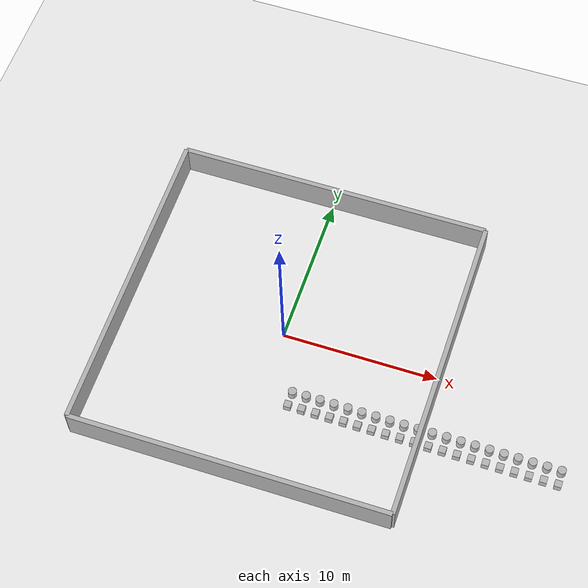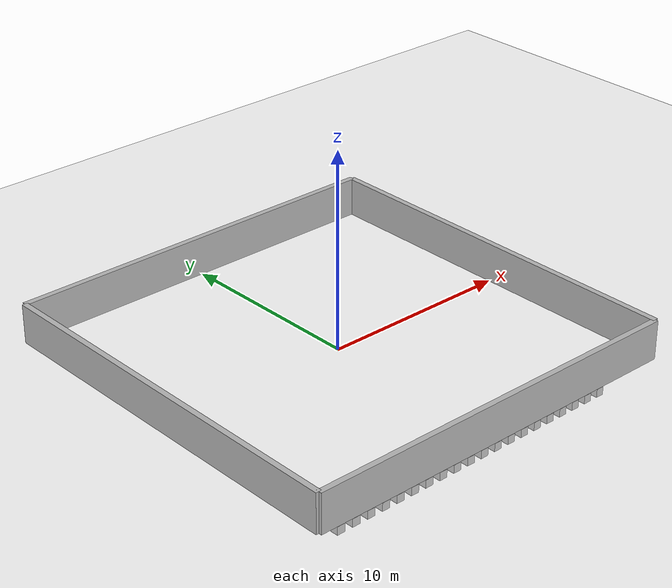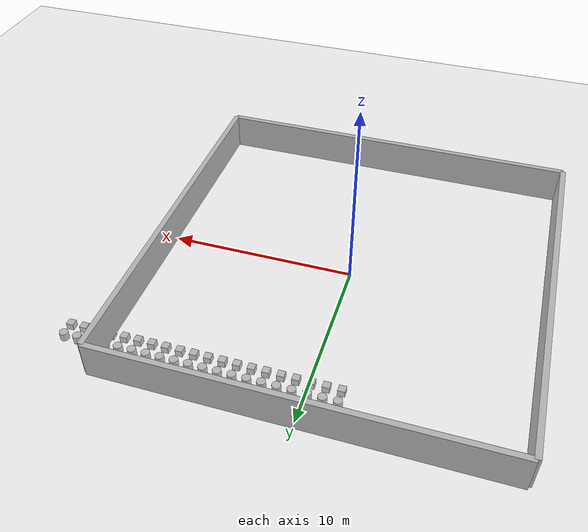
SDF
<sdf version='1.9'>
  <world name='big'>
    <physics name='1ms' type='ignored'>
      <max_step_size>0.003</max_step_size>
      <real_time_factor>1</real_time_factor>
      <real_time_update_rate>1000</real_time_update_rate>
    </physics>

    <plugin name='ignition::gazebo::systems::Physics' filename='ignition-gazebo-physics-system'/>
    <plugin name='ignition::gazebo::systems::UserCommands' filename='ignition-gazebo-user-commands-system'/>
    <plugin name='ignition::gazebo::systems::SceneBroadcaster' filename='ignition-gazebo-scene-broadcaster-system'/>
    <plugin name='ignition::gazebo::systems::Contact' filename='ignition-gazebo-contact-system'/>

    <gravity>0 0 -9.8</gravity>
    <scene>
      <ambient>0.4 0.4 0.4 1</ambient>
      <background>0.7 0.7 0.7 1</background>
      <shadows>true</shadows>
    </scene>

    <!-- 地面 -->
    <model name='ground_plane'>
      <static>true</static>
      <link name='link'>
        <collision name='collision'>
          <geometry><plane><normal>0 0 1</normal><size>100 100</size></plane></geometry>
        </collision>
        <visual name='visual'>
          <geometry><plane><normal>0 0 1</normal><size>100 100</size></plane></geometry>
          <material>
            <ambient>0.8 0.8 0.8 1</ambient>
            <diffuse>0.8 0.8 0.8 1</diffuse>
            <specular>0.8 0.8 0.8 1</specular>
          </material>
        </visual>
      </link>
    </model>

    <!-- 外框：20x20，牆高 2m，厚 0.3m -->
    <model name='border'>
      <pose>0 0 1 0 0 0</pose>
      <static>true</static>
      <link name='wall_west'>
        <pose>-10.15 0 0 0 0 0</pose>
        <collision name='col'><geometry><box><size>0.3 20.3 2</size></box></geometry></collision>
        <visual name='vis'><geometry><box><size>0.3 20.3 2</size></box></geometry></visual>
      </link>
      <link name='wall_east'>
        <pose>10.15 0 0 0 0 0</pose>
        <collision name='col'><geometry><box><size>0.3 20.3 2</size></box></geometry></collision>
        <visual name='vis'><geometry><box><size>0.3 20.3 2</size></box></geometry></visual>
      </link>
      <link name='wall_north'>
        <pose>0 10.15 0 0 0 0</pose>
        <collision name='col'><geometry><box><size>20.3 0.3 2</size></box></geometry></collision>
        <visual name='vis'><geometry><box><size>20.3 0.3 2</size></box></geometry></visual>
      </link>
      <link name='wall_south'>
        <pose>0 -10.15 0 0 0 0</pose>
        <collision name='col'><geometry><box><size>20.3 0.3 2</size></box></geometry></collision>
        <visual name='vis'><geometry><box><size>20.3 0.3 2</size></box></geometry></visual>
      </link>
    </model>

    <!-- 預埋物件池：10 個方柱 + 10 個圓柱，初始藏在 z = -10 -->
    <!-- 方柱大小 0.5x0.5x0.5，圓柱半徑 0.3，高 0.6，皆 static -->
    <!-- 你若要改尺寸，記得在 ObstacleManager 的 radius 也同步調整 -->
    <!-- Boxes -->
    <model name='box_pool_0'><pose>0 0 -10 0 0 0</pose><static>true</static>
      <link name='link'><visual name='vis'><geometry><box><size>0.5 0.5 0.5</size></box></geometry></visual>
      <collision name='col'><geometry><box><size>0.5 0.5 0.5</size></box></geometry></collision></link>
    </model>
    <model name='box_pool_1'><pose>1 0 -10 0 0 0</pose><static>true</static>
      <link name='link'><visual name='vis'><geometry><box><size>0.5 0.5 0.5</size></box></geometry></visual>
      <collision name='col'><geometry><box><size>0.5 0.5 0.5</size></box></geometry></collision></link>
    </model>
    <model name='box_pool_2'><pose>2 0 -10 0 0 0</pose><static>true</static>
      <link name='link'><visual name='vis'><geometry><box><size>0.5 0.5 0.5</size></box></geometry></visual>
      <collision name='col'><geometry><box><size>0.5 0.5 0.5</size></box></geometry></collision></link>
    </model>
    <model name='box_pool_3'><pose>3 0 -10 0 0 0</pose><static>true</static>
      <link name='link'><visual name='vis'><geometry><box><size>0.5 0.5 0.5</size></box></geometry></visual>
      <collision name='col'><geometry><box><size>0.5 0.5 0.5</size></box></geometry></collision></link>
    </model>
    <model name='box_pool_4'><pose>4 0 -10 0 0 0</pose><static>true</static>
      <link name='link'><visual name='vis'><geometry><box><size>0.5 0.5 0.5</size></box></geometry></visual>
      <collision name='col'><geometry><box><size>0.5 0.5 0.5</size></box></geometry></collision></link>
    </model>
    <model name='box_pool_5'><pose>5 0 -10 0 0 0</pose><static>true</static>
      <link name='link'><visual name='vis'><geometry><box><size>0.5 0.5 0.5</size></box></geometry></visual>
      <collision name='col'><geometry><box><size>0.5 0.5 0.5</size></box></geometry></collision></link>
    </model>
    <model name='box_pool_6'><pose>6 0 -10 0 0 0</pose><static>true</static>
      <link name='link'><visual name='vis'><geometry><box><size>0.5 0.5 0.5</size></box></geometry></visual>
      <collision name='col'><geometry><box><size>0.5 0.5 0.5</size></box></geometry></collision></link>
    </model>
    <model name='box_pool_7'><pose>7 0 -10 0 0 0</pose><static>true</static>
      <link name='link'><visual name='vis'><geometry><box><size>0.5 0.5 0.5</size></box></geometry></visual>
      <collision name='col'><geometry><box><size>0.5 0.5 0.5</size></box></geometry></collision></link>
    </model>
    <model name='box_pool_8'><pose>8 0 -10 0 0 0</pose><static>true</static>
      <link name='link'><visual name='vis'><geometry><box><size>0.5 0.5 0.5</size></box></geometry></visual>
      <collision name='col'><geometry><box><size>0.5 0.5 0.5</size></box></geometry></collision></link>
    </model>
    <model name='box_pool_9'><pose>9 0 -10 0 0 0</pose><static>true</static>
      <link name='link'><visual name='vis'><geometry><box><size>0.5 0.5 0.5</size></box></geometry></visual>
      <collision name='col'><geometry><box><size>0.5 0.5 0.5</size></box></geometry></collision></link>
    </model>
    <model name='box_pool_10'><pose>10 0 -10 0 0 0</pose><static>true</static>
      <link name='link'><visual name='vis'><geometry><box><size>0.5 0.5 0.5</size></box></geometry></visual>
      <collision name='col'><geometry><box><size>0.5 0.5 0.5</size></box></geometry></collision></link>
    </model>
    <model name='box_pool_11'><pose>11 0 -10 0 0 0</pose><static>true</static>
      <link name='link'><visual name='vis'><geometry><box><size>0.5 0.5 0.5</size></box></geometry></visual>
      <collision name='col'><geometry><box><size>0.5 0.5 0.5</size></box></geometry></collision></link>
    </model>
    <model name='box_pool_12'><pose>12 0 -10 0 0 0</pose><static>true</static>
      <link name='link'><visual name='vis'><geometry><box><size>0.5 0.5 0.5</size></box></geometry></visual>
      <collision name='col'><geometry><box><size>0.5 0.5 0.5</size></box></geometry></collision></link>
    </model>
    <model name='box_pool_13'><pose>13 0 -10 0 0 0</pose><static>true</static>
      <link name='link'><visual name='vis'><geometry><box><size>0.5 0.5 0.5</size></box></geometry></visual>
      <collision name='col'><geometry><box><size>0.5 0.5 0.5</size></box></geometry></collision></link>
    </model>
    <model name='box_pool_14'><pose>14 0 -10 0 0 0</pose><static>true</static>
      <link name='link'><visual name='vis'><geometry><box><size>0.5 0.5 0.5</size></box></geometry></visual>
      <collision name='col'><geometry><box><size>0.5 0.5 0.5</size></box></geometry></collision></link>
    </model>
    <model name='box_pool_15'><pose>15 0 -10 0 0 0</pose><static>true</static>
      <link name='link'><visual name='vis'><geometry><box><size>0.5 0.5 0.5</size></box></geometry></visual>
      <collision name='col'><geometry><box><size>0.5 0.5 0.5</size></box></geometry></collision></link>
    </model>
    <model name='box_pool_16'><pose>16 0 -10 0 0 0</pose><static>true</static>
      <link name='link'><visual name='vis'><geometry><box><size>0.5 0.5 0.5</size></box></geometry></visual>
      <collision name='col'><geometry><box><size>0.5 0.5 0.5</size></box></geometry></collision></link>
    </model>
    <model name='box_pool_17'><pose>17 0 -10 0 0 0</pose><static>true</static>
      <link name='link'><visual name='vis'><geometry><box><size>0.5 0.5 0.5</size></box></geometry></visual>
      <collision name='col'><geometry><box><size>0.5 0.5 0.5</size></box></geometry></collision></link>
    </model>
    <model name='box_pool_18'><pose>18 0 -10 0 0 0</pose><static>true</static>
      <link name='link'><visual name='vis'><geometry><box><size>0.5 0.5 0.5</size></box></geometry></visual>
      <collision name='col'><geometry><box><size>0.5 0.5 0.5</size></box></geometry></collision></link>
    </model>
    <model name='box_pool_19'><pose>19 0 -10 0 0 0</pose><static>true</static>
      <link name='link'><visual name='vis'><geometry><box><size>0.5 0.5 0.5</size></box></geometry></visual>
      <collision name='col'><geometry><box><size>0.5 0.5 0.5</size></box></geometry></collision></link>
    </model>

    <!-- Cylinders -->
    <model name='cyl_pool_0'><pose>0 1 -10 0 0 0</pose><static>true</static>
      <link name='link'><visual name='vis'><geometry><cylinder><radius>0.3</radius><length>0.6</length></cylinder></geometry></visual>
      <collision name='col'><geometry><cylinder><radius>0.3</radius><length>0.6</length></cylinder></geometry></collision></link>
    </model>
    <model name='cyl_pool_1'><pose>1 1 -10 0 0 0</pose><static>true</static>
      <link name='link'><visual name='vis'><geometry><cylinder><radius>0.3</radius><length>0.6</length></cylinder></geometry></visual>
      <collision name='col'><geometry><cylinder><radius>0.3</radius><length>0.6</length></cylinder></geometry></collision></link>
    </model>
    <model name='cyl_pool_2'><pose>2 1 -10 0 0 0</pose><static>true</static>
      <link name='link'><visual name='vis'><geometry><cylinder><radius>0.3</radius><length>0.6</length></cylinder></geometry></visual>
      <collision name='col'><geometry><cylinder><radius>0.3</radius><length>0.6</length></cylinder></geometry></collision></link>
    </model>
    <model name='cyl_pool_3'><pose>3 1 -10 0 0 0</pose><static>true</static>
      <link name='link'><visual name='vis'><geometry><cylinder><radius>0.3</radius><length>0.6</length></cylinder></geometry></visual>
      <collision name='col'><geometry><cylinder><radius>0.3</radius><length>0.6</length></cylinder></geometry></collision></link>
    </model>
    <model name='cyl_pool_4'><pose>4 1 -10 0 0 0</pose><static>true</static>
      <link name='link'><visual name='vis'><geometry><cylinder><radius>0.3</radius><length>0.6</length></cylinder></geometry></visual>
      <collision name='col'><geometry><cylinder><radius>0.3</radius><length>0.6</length></cylinder></geometry></collision></link>
    </model>
    <model name='cyl_pool_5'><pose>5 1 -10 0 0 0</pose><static>true</static>
      <link name='link'><visual name='vis'><geometry><cylinder><radius>0.3</radius><length>0.6</length></cylinder></geometry></visual>
      <collision name='col'><geometry><cylinder><radius>0.3</radius><length>0.6</length></cylinder></geometry></collision></link>
    </model>
    <model name='cyl_pool_6'><pose>6 1 -10 0 0 0</pose><static>true</static>
      <link name='link'><visual name='vis'><geometry><cylinder><radius>0.3</radius><length>0.6</length></cylinder></geometry></visual>
      <collision name='col'><geometry><cylinder><radius>0.3</radius><length>0.6</length></cylinder></geometry></collision></link>
    </model>
    <model name='cyl_pool_7'><pose>7 1 -10 0 0 0</pose><static>true</static>
      <link name='link'><visual name='vis'><geometry><cylinder><radius>0.3</radius><length>0.6</length></cylinder></geometry></visual>
      <collision name='col'><geometry><cylinder><radius>0.3</radius><length>0.6</length></cylinder></geometry></collision></link>
    </model>
    <model name='cyl_pool_8'><pose>8 1 -10 0 0 0</pose><static>true</static>
      <link name='link'><visual name='vis'><geometry><cylinder><radius>0.3</radius><length>0.6</length></cylinder></geometry></visual>
      <collision name='col'><geometry><cylinder><radius>0.3</radius><length>0.6</length></cylinder></geometry></collision></link>
    </model>
    <model name='cyl_pool_9'><pose>9 1 -10 0 0 0</pose><static>true</static>
      <link name='link'><visual name='vis'><geometry><cylinder><radius>0.3</radius><length>0.6</length></cylinder></geometry></visual>
      <collision name='col'><geometry><cylinder><radius>0.3</radius><length>0.6</length></cylinder></geometry></collision></link>
    </model>
    <model name='cyl_pool_10'><pose>10 1 -10 0 0 0</pose><static>true</static>
      <link name='link'><visual name='vis'><geometry><cylinder><radius>0.3</radius><length>0.6</length></cylinder></geometry></visual>
      <collision name='col'><geometry><cylinder><radius>0.3</radius><length>0.6</length></cylinder></geometry></collision></link>
    </model>
    <model name='cyl_pool_11'><pose>11 1 -10 0 0 0</pose><static>true</static>
      <link name='link'><visual name='vis'><geometry><cylinder><radius>0.3</radius><length>0.6</length></cylinder></geometry></visual>
      <collision name='col'><geometry><cylinder><radius>0.3</radius><length>0.6</length></cylinder></geometry></collision></link>
    </model>
    <model name='cyl_pool_12'><pose>12 1 -10 0 0 0</pose><static>true</static>
      <link name='link'><visual name='vis'><geometry><cylinder><radius>0.3</radius><length>0.6</length></cylinder></geometry></visual>
      <collision name='col'><geometry><cylinder><radius>0.3</radius><length>0.6</length></cylinder></geometry></collision></link>
    </model>
    <model name='cyl_pool_13'><pose>13 1 -10 0 0 0</pose><static>true</static>
      <link name='link'><visual name='vis'><geometry><cylinder><radius>0.3</radius><length>0.6</length></cylinder></geometry></visual>
      <collision name='col'><geometry><cylinder><radius>0.3</radius><length>0.6</length></cylinder></geometry></collision></link>
    </model>
    <model name='cyl_pool_14'><pose>14 1 -10 0 0 0</pose><static>true</static>
      <link name='link'><visual name='vis'><geometry><cylinder><radius>0.3</radius><length>0.6</length></cylinder></geometry></visual>
      <collision name='col'><geometry><cylinder><radius>0.3</radius><length>0.6</length></cylinder></geometry></collision></link>
    </model>
    <model name='cyl_pool_15'><pose>15 1 -10 0 0 0</pose><static>true</static>
      <link name='link'><visual name='vis'><geometry><cylinder><radius>0.3</radius><length>0.6</length></cylinder></geometry></visual>
      <collision name='col'><geometry><cylinder><radius>0.3</radius><length>0.6</length></cylinder></geometry></collision></link>
    </model>
    <model name='cyl_pool_16'><pose>16 1 -10 0 0 0</pose><static>true</static>
      <link name='link'><visual name='vis'><geometry><cylinder><radius>0.3</radius><length>0.6</length></cylinder></geometry></visual>
      <collision name='col'><geometry><cylinder><radius>0.3</radius><length>0.6</length></cylinder></geometry></collision></link>
    </model>
    <model name='cyl_pool_17'><pose>17 1 -10 0 0 0</pose><static>true</static>
      <link name='link'><visual name='vis'><geometry><cylinder><radius>0.3</radius><length>0.6</length></cylinder></geometry></visual>
      <collision name='col'><geometry><cylinder><radius>0.3</radius><length>0.6</length></cylinder></geometry></collision></link>
    </model>
    <model name='cyl_pool_18'><pose>18 1 -10 0 0 0</pose><static>true</static>
      <link name='link'><visual name='vis'><geometry><cylinder><radius>0.3</radius><length>0.6</length></cylinder></geometry></visual>
      <collision name='col'><geometry><cylinder><radius>0.3</radius><length>0.6</length></cylinder></geometry></collision></link>
    </model>
    <model name='cyl_pool_19'><pose>19 1 -10 0 0 0</pose><static>true</static>
      <link name='link'><visual name='vis'><geometry><cylinder><radius>0.3</radius><length>0.6</length></cylinder></geometry></visual>
      <collision name='col'><geometry><cylinder><radius>0.3</radius><length>0.6</length></cylinder></geometry></collision></link>
    </model>

    <light name='sun' type='directional'>
      <pose>0 0 10 0 0 0</pose>
      <cast_shadows>true</cast_shadows>
      <direction>-0.5 0.1 -0.9</direction>
    </light>
  </world>
</sdf>
